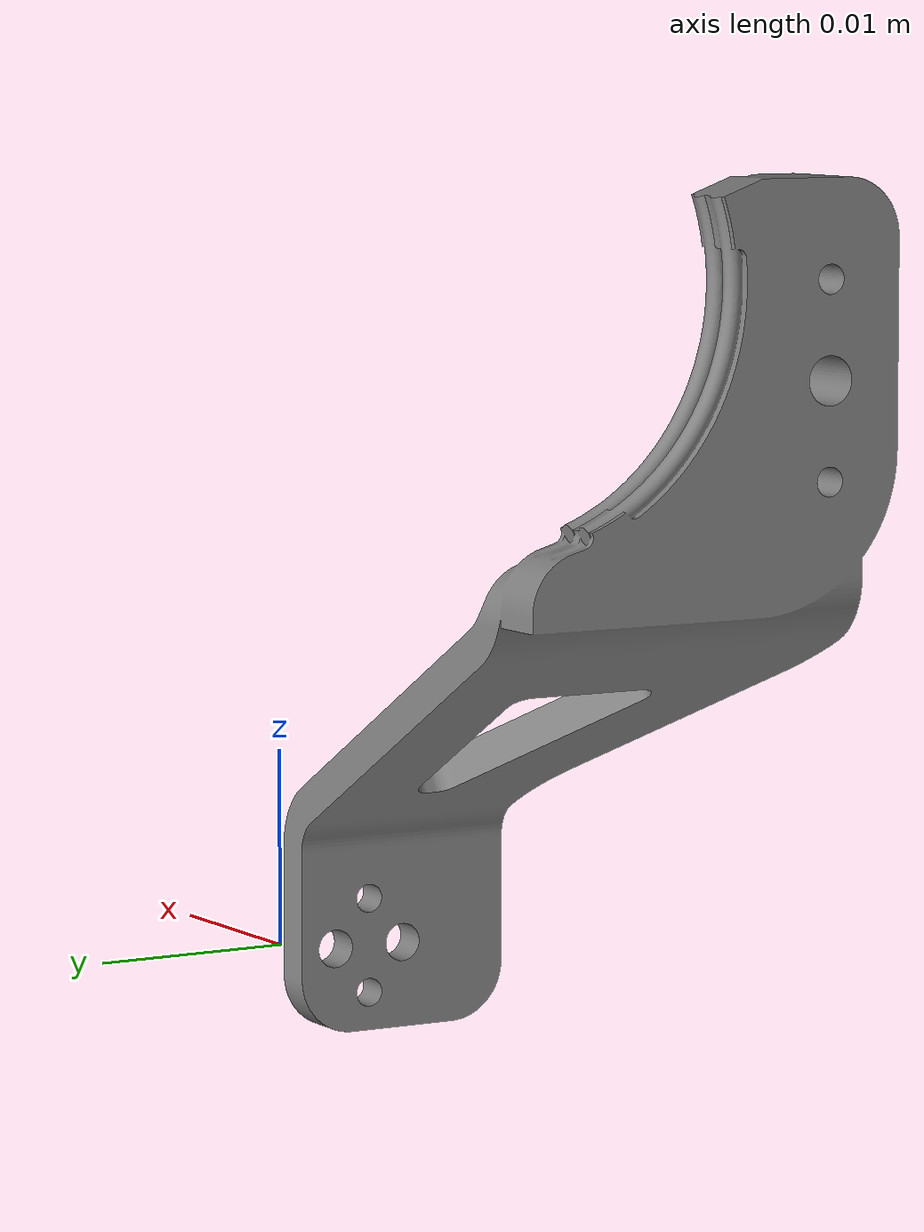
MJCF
<mujoco model="finger2">
  <default>
    <default class="visual">
      <geom group="2" type="mesh" contype="0" conaffinity="0"/>
    </default>
    <default class="collision">
      <geom group="3" type="mesh"/>
    </default>
  </default>
  <asset>
    <mesh file="finger2.obj"/>
  </asset>
  <worldbody>
    <body name="finger2">
      <geom mesh="finger2" class="visual"/>
      <geom mesh="finger2" class="collision"/>
    </body>
  </worldbody>
</mujoco>
